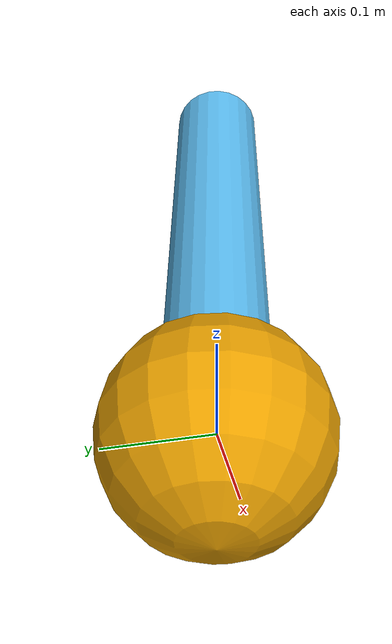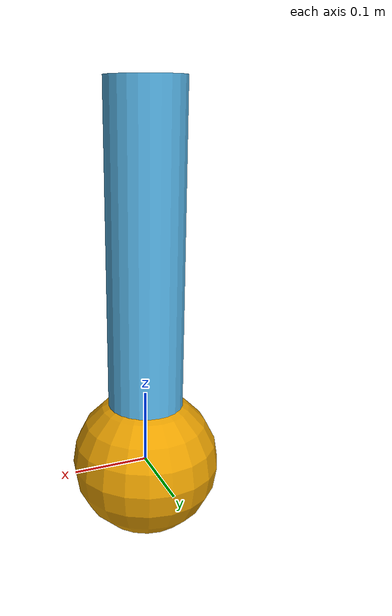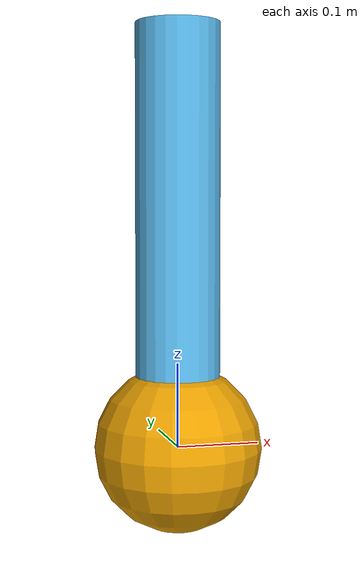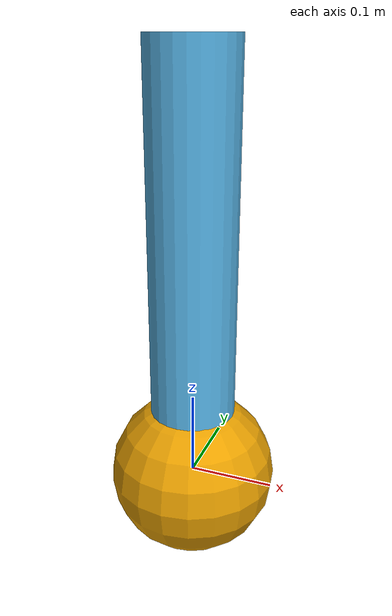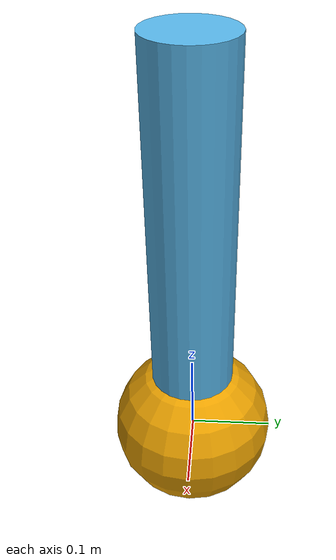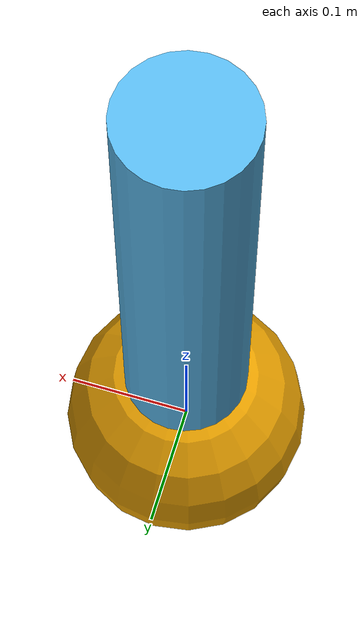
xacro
<?xml version="1.0"?>
<robot name="demo" xmlns:xacro="http://www.ros.org/wiki/xacro">
  <xacro:include filename="../includes/base.urdf.xacro"/>
  <xacro:property name="arm_length" value="0.5"/>
  <link name="arm_link">
    <visual>
      <origin xyz="0 0 0.25" rpy="0 0 0"/>
      <geometry><cylinder radius="0.05" length="${arm_length}"/></geometry>
    </visual>
  </link>
  <joint name="base_to_arm" type="fixed">
    <parent link="base_link"/>
    <child link="arm_link"/>
  </joint>
</robot>

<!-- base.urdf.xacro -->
<robot name="parts" xmlns:xacro="http://www.ros.org/wiki/xacro">
  <xacro:property name="base_radius" value="0.1"/>
  <link name="base_link">
    <inertial>
      <mass value="1.0"/>
      <inertia ixx="0.01" ixy="0" ixz="0" iyy="0.01" iyz="0" izz="0.01"/>
    </inertial>
    <visual>
      <geometry><sphere radius="${base_radius}"/></geometry>
    </visual>
  </link>
</robot>
